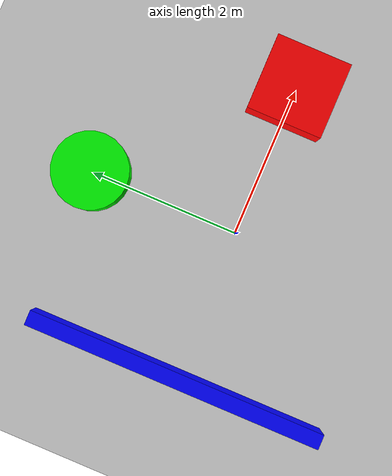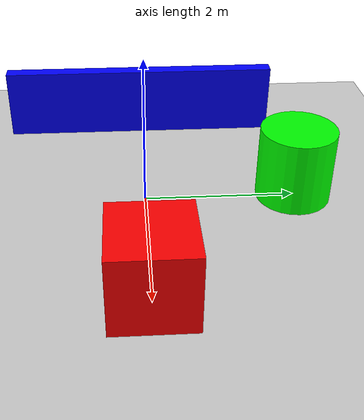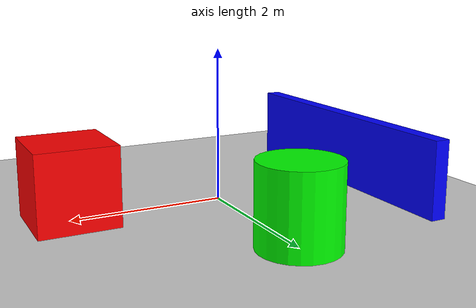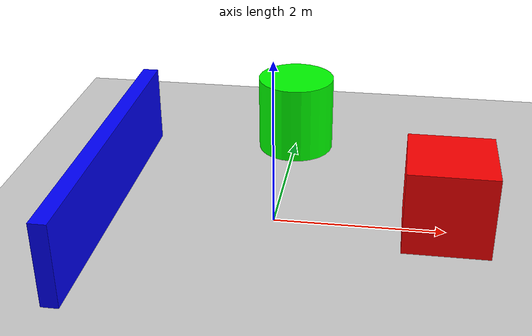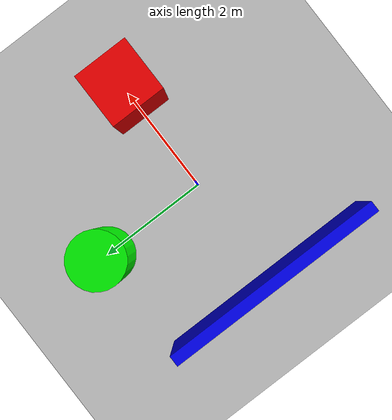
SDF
<sdf version='1.10'>
  <world name='obstacles'>
    <physics name='1ms' type='ignored'>
      <max_step_size>0.001</max_step_size>
      <real_time_factor>1</real_time_factor>
      <real_time_update_rate>1000</real_time_update_rate>
    </physics>
    <plugin name='gz::sim::systems::Physics' filename='gz-sim-physics-system'/>
    <plugin name='gz::sim::systems::UserCommands' filename='gz-sim-user-commands-system'/>
    <plugin name='gz::sim::systems::SceneBroadcaster' filename='gz-sim-scene-broadcaster-system'/>
    <plugin name='gz::sim::systems::Contact' filename='gz-sim-contact-system'/>
    <gravity>0 0 -9.8000000000000007</gravity>
    <magnetic_field>5.5644999999999998e-06 2.2875799999999999e-05 -4.2388400000000002e-05</magnetic_field>
    <atmosphere type='adiabatic'/>
    <scene>
      <ambient>0.400000006 0.400000006 0.400000006 1</ambient>
      <background>0.699999988 0.699999988 0.699999988 1</background>
      <shadows>true</shadows>
    </scene>
    <model name='ground_plane'>
      <static>true</static>
      <link name='link'>
        <collision name='collision'>
          <geometry>
            <plane>
              <normal>0 0 1</normal>
              <size>100 100</size>
            </plane>
          </geometry>
          <surface>
            <friction>
              <ode/>
            </friction>
            <bounce/>
            <contact/>
          </surface>
        </collision>
        <visual name='visual'>
          <geometry>
            <plane>
              <normal>0 0 1</normal>
              <size>100 100</size>
            </plane>
          </geometry>
          <material>
            <ambient>0.800000012 0.800000012 0.800000012 1</ambient>
            <diffuse>0.800000012 0.800000012 0.800000012 1</diffuse>
            <specular>0.800000012 0.800000012 0.800000012 1</specular>
          </material>
        </visual>
        <pose>0 0 0 0 0 0</pose>
        <inertial>
          <pose>0 0 0 0 0 0</pose>
          <mass>1</mass>
          <inertia>
            <ixx>1</ixx>
            <ixy>0</ixy>
            <ixz>0</ixz>
            <iyy>1</iyy>
            <iyz>0</iyz>
            <izz>1</izz>
          </inertia>
        </inertial>
        <enable_wind>false</enable_wind>
      </link>
      <pose>0 0 0 0 0 0</pose>
      <self_collide>false</self_collide>
    </model>
    <light name='sun' type='directional'>
      <pose>0 0 10 0 0 0</pose>
      <cast_shadows>true</cast_shadows>
      <intensity>1</intensity>
      <direction>-0.5 0.10000000000000001 -0.90000000000000002</direction>
      <diffuse>0.800000012 0.800000012 0.800000012 1</diffuse>
      <specular>0.200000003 0.200000003 0.200000003 1</specular>
      <attenuation>
        <range>1000</range>
        <linear>0.01</linear>
        <constant>0.90000000000000002</constant>
        <quadratic>0.001</quadratic>
      </attenuation>
      <spot>
        <inner_angle>0</inner_angle>
        <outer_angle>0</outer_angle>
        <falloff>0</falloff>
      </spot>
    </light>

    <!-- Obstacles -->
    <model name='box_obstacle'>
      <pose>2 0 0.5 0 0 0</pose>
      <static>true</static>
      <link name='link'>
        <collision name='collision'>
          <geometry>
            <box>
              <size>1 1 1</size>
            </box>
          </geometry>
        </collision>
        <visual name='visual'>
          <geometry>
            <box>
              <size>1 1 1</size>
            </box>
          </geometry>
          <material>
            <ambient>1 0 0 1</ambient>
            <diffuse>1 0 0 1</diffuse>
          </material>
        </visual>
      </link>
    </model>

    <model name='cylinder_obstacle'>
      <pose>0 2 0.5 0 0 0</pose>
      <static>true</static>
      <link name='link'>
        <collision name='collision'>
          <geometry>
            <cylinder>
              <radius>0.5</radius>
              <length>1</length>
            </cylinder>
          </geometry>
        </collision>
        <visual name='visual'>
          <geometry>
            <cylinder>
              <radius>0.5</radius>
              <length>1</length>
            </cylinder>
          </geometry>
          <material>
            <ambient>0 1 0 1</ambient>
            <diffuse>0 1 0 1</diffuse>
          </material>
        </visual>
      </link>
    </model>

    <model name='wall_obstacle'>
      <pose>-2 0 0.5 0 0 0</pose>
      <static>true</static>
      <link name='link'>
        <collision name='collision'>
          <geometry>
            <box>
              <size>0.2 4 1</size>
            </box>
          </geometry>
        </collision>
        <visual name='visual'>
          <geometry>
            <box>
              <size>0.2 4 1</size>
            </box>
          </geometry>
          <material>
            <ambient>0 0 1 1</ambient>
            <diffuse>0 0 1 1</diffuse>
          </material>
        </visual>
      </link>
    </model>

  </world>
</sdf>
